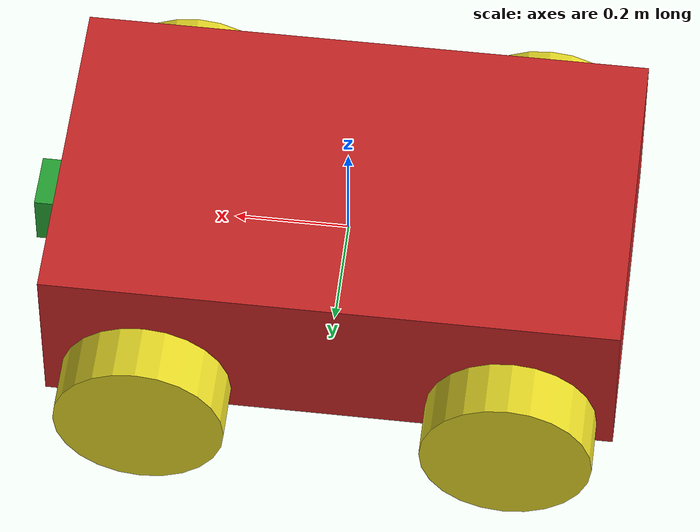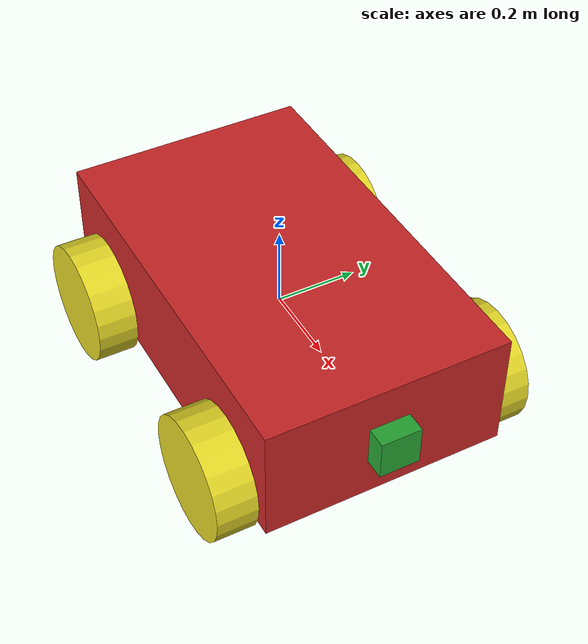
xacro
<?xml version="1.0"?>

<robot name = "differential_drive_robot" xmlns:xacro="http://www.ros.org/wiki/xacro">

<!-- camera dimention-->
<xacro:property name="camera_link" value="0.1"/>
<!-- body dimention-->
<xacro:property name="body_link_x_dim" value="1.0"/>
<xacro:property name="body_link_y_dim" value="0.6"/>
<xacro:property name="body_link_z_dim" value="0.3"/>

<!-- wheel dimention-->
<xacro:property name="wheel_link_radius" value="0.15"/>
<xacro:property name="wheel_link_length" value="0.1"/>
<xacro:property name="wheel_link_z_location" value="-0.1"/>

<!-- Material density-->
<xacro:property name="body_density" value="2710.0"/>
<xacro:property name="wheel_density" value="2710.0"/>

<!-- PI constant-->
<xacro:property name="pi_const" value="3.14159265"/>

<!-- robot body and wheel mass-->
<xacro:property name="body_mass" value="${body_density*body_link_x_dim*body_link_y_dim*body_link_z_dim}"/>
<xacro:property name="wheel_mass" value="${wheel_density*pi_const*wheel_link_radius*wheel_link_radius*wheel_link_length}"/>

<!-- moments of inertia of the wheel-->
<xacro:property name="Iz_wheel" value="${0.5*wheel_mass*wheel_link_radius*wheel_link_radius}"/>
<xacro:property name="I_wheel" value="${(1.0/12.0)*wheel_mass*(3.0*wheel_link_radius*wheel_link_radius+wheel_link_length*wheel_link_length)}"/>

<!-- the complete inertial sectio, of the wheel-->
<xacro:macro name="inertia_wheel">
	<inertial>
	<origin rpy="0 0 0" xyz="0 0 0"/>
	<mass value="${wheel_mass}"/>
	<inertia ixx="${I_wheel}" ixy="0.0" ixz="0.0" iyy="${I_wheel}" iyz="0" izz="${Iz_wheel}" />
	</inertial>
</xacro:macro>

<!-- gazebo define control driver-->
<xacro:include filename="$(find robot_model_pkg)/urdf/robot.gazebo" />

<link name="dummy">
</link>
<joint name="dummy_joint" type="fixed">
	<parent link="dummy" />
	<child link="body_link" />
</joint>

<!-- $$$$$$$ start body link $$$$$$$$-->
<link name="body_link">
	<visual>
		<geometry>
			<box size="${body_link_x_dim} ${body_link_y_dim} ${body_link_z_dim}"/>
		</geometry>
	<origin rpy="0 0 0" xyz="0 0 0"/>
	</visual>

	<collision>
		<geometry>
			<box size="${body_link_x_dim} ${body_link_y_dim} ${body_link_z_dim}"/>
		</geometry>
		<origin rpy="0 0 0" xyz="0 0 0"/>
	</collision>

	<inertial>
		<origin rpy="0 0 0" xyz="0 0 0"/>
		<mass value="${body_mass}"/>
	<inertia
	ixx="${(1/12)*body_mass*(body_link_y_dim*body_link_y_dim + body_link_z_dim*body_link_z_dim)}"
	ixy="0"
	ixz="0"
	iyy="${(1/12)*body_mass*(body_link_x_dim*body_link_x_dim+body_link_z_dim*body_link_z_dim)}"
	iyz="0"
	izz="${(1/12)*body_mass*(body_link_y_dim*body_link_y_dim+body_link_x_dim*body_link_x_dim)}"/>
	</inertial>
</link>

<!-- $$$$$$$ end body link $$$$$$$$-->

<!-- $$$$$$$ start wheel back right $$$$$$$$-->

<joint name="wheel1_joint" type="continuous" >
	<parent link="body_link"/>
	<child link="wheel1_link"/>
	<origin xyz="${-body_link_x_dim/2+1.2*wheel_link_radius} ${-body_link_y_dim/2-wheel_link_length/2} ${wheel_link_z_location}" rpy="0 0 0" />
	<axis xyz="0 1 0" />
	<limit effort="1000" velocity="1000"/>
	<dynamics damping="1.0" friction="1.0"/>
</joint>

<link name="wheel1_link">
	<visual>
		<origin rpy="1.570795 0 0" xyz="0 0 0"/>
		<geometry>
			<cylinder length="${wheel_link_length}" radius="${wheel_link_radius}"/>
		</geometry>
	</visual>

	<collision>
		<origin rpy="1.570795 0 0" xyz="0 0 0"/>
		<geometry>
			<cylinder length="${wheel_link_length}" radius="${wheel_link_radius}"/>
		</geometry>
	</collision>

	<xacro:inertia_wheel/>
</link>

<!-- $$$$$$$ start wheel back left $$$$$$$$-->

<joint name="wheel2_joint" type="continuous" >
	<parent link="body_link"/>
	<child link="wheel2_link"/>
	<origin xyz="${-body_link_x_dim/2+1.2*wheel_link_radius} ${body_link_y_dim/2+wheel_link_length/2} ${wheel_link_z_location}" rpy="0 0 0" />
	<axis xyz="0 1 0" />
	<limit effort="1000" velocity="1000"/>
	<dynamics damping="1.0" friction="1.0"/>
</joint>

<link name="wheel2_link">
	<visual>
		<origin rpy="1.570795 0 0" xyz="0 0 0"/>
		<geometry>
			<cylinder length="${wheel_link_length}" radius="${wheel_link_radius}"/>
		</geometry>
	</visual>

	<collision>
		<origin rpy="1.570795 0 0" xyz="0 0 0"/>
		<geometry>
			<cylinder length="${wheel_link_length}" radius="${wheel_link_radius}"/>
		</geometry>
	</collision>

	<xacro:inertia_wheel />
</link>

<!-- $$$$$$$ start wheel front right $$$$$$$$-->

<joint name="wheel3_joint" type="continuous" >
	<parent link="body_link"/>
	<child link="wheel3_link"/>
	<origin xyz="${body_link_x_dim/2-1.2*wheel_link_radius} ${-body_link_y_dim/2-wheel_link_length/2} ${wheel_link_z_location}" rpy="0 0 0" />
	<axis xyz="0 1 0" />
	<limit effort="1000" velocity="1000"/>
	<dynamics damping="1.0" friction="1.0"/>
</joint>

<link name="wheel3_link">
	<visual>
		<origin rpy="1.570795 0 0" xyz="0 0 0"/>
		<geometry>
			<cylinder length="${wheel_link_length}" radius="${wheel_link_radius}"/>
		</geometry>
	</visual>

	<collision>
		<origin rpy="1.570795 0 0" xyz="0 0 0"/>
		<geometry>
			<cylinder length="${wheel_link_length}" radius="${wheel_link_radius}"/>
		</geometry>
	</collision>

	<xacro:inertia_wheel />
</link>

<!-- $$$$$$$ start wheel front left $$$$$$$$-->

<joint name="wheel4_joint" type="continuous" >
	<parent link="body_link"/>
	<child link="wheel4_link"/>
	<origin xyz="${body_link_x_dim/2-1.2*wheel_link_radius} ${body_link_y_dim/2+wheel_link_length/2} ${wheel_link_z_location}" rpy="0 0 0" />
	<axis xyz="0 1 0" />
	<limit effort="1000" velocity="1000"/>
	<dynamics damping="1.0" friction="1.0"/>
</joint>

<link name="wheel4_link">
	<visual>
		<origin rpy="1.570795 0 0" xyz="0 0 0"/>
		<geometry>
			<cylinder length="${wheel_link_length}" radius="${wheel_link_radius}"/>
		</geometry>
	</visual>

	<collision>
		<origin rpy="1.570795 0 0" xyz="0 0 0"/>
		<geometry>
			<cylinder length="${wheel_link_length}" radius="${wheel_link_radius}"/>
		</geometry>
	</collision>

	<xacro:inertia_wheel />
</link>

  <joint name="camera_joint" type="fixed">
    <axis xyz="0 1 0" />
    <origin xyz="0.5 0 0" rpy="0 0 0"/>
    <parent link="body_link"/>
    <child link="camera_link"/>
  </joint>

  <!-- Camera -->
  <link name="camera_link">
    <collision>
      <origin xyz="0 0 0" rpy="0 0 0"/>
      <geometry>
    <box size="${camera_link} ${camera_link} ${camera_link}"/>
      </geometry>
    </collision>

    <visual>
      <origin xyz="0 0 0" rpy="0 0 0"/>
      <geometry>
    <box size="${camera_link} ${camera_link} ${camera_link}"/>
      </geometry>
      <material name="Green"/>
    </visual>

    <inertial>
      <mass value="0.1" />
      <origin xyz="0 0 0" rpy="0 0 0"/>
      <inertia ixx="1e-6" ixy="0" ixz="0" iyy="1e-6" iyz="0" izz="1e-6" />
    </inertial>
  </link>

</robot>
